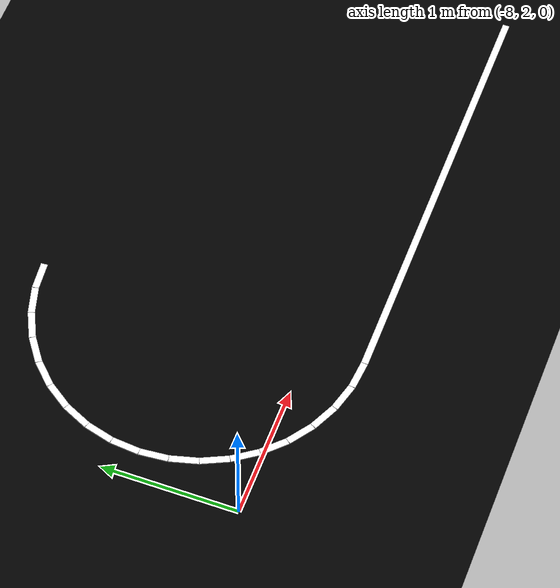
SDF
<sdf version="1.8">
 <world name="line_following_obstacle_world_v2">
  <model name="ground_plane">
   <static>true</static>
   <link name="link">
    <collision name="collision">
     <geometry><plane><normal>0 0 1</normal><size>25 25</size></plane></geometry>
    </collision>
    <visual name="visual">
     <geometry><plane><normal>0 0 1</normal><size>25 25</size></plane></geometry>
     <material><ambient>0 0 0 1</ambient><diffuse>0 0 0 1</diffuse></material>
    </visual>
   </link>
  </model>
  <model name="left_top_u_1">
   <static>true</static>
   <pose>-6.7042 3.9909 0.0060 0 0 -3.054326</pose>
   <link name="link">
    <collision name="collision"><geometry><box><size>0.2092 0.0500 0.0050</size></box></geometry></collision>
    <visual name="visual">
     <geometry><box><size>0.2092 0.0500 0.0050</size></box></geometry>
     <material><ambient>1 1 1 1</ambient><diffuse>1 1 1 1</diffuse></material>
    </visual>
   </link>
  </model>
  <model name="left_top_u_2">
   <static>true</static>
   <pose>-6.9094 3.9547 0.0060 0 0 -2.879793</pose>
   <link name="link">
    <collision name="collision"><geometry><box><size>0.2092 0.0500 0.0050</size></box></geometry></collision>
    <visual name="visual">
     <geometry><box><size>0.2092 0.0500 0.0050</size></box></geometry>
     <material><ambient>1 1 1 1</ambient><diffuse>1 1 1 1</diffuse></material>
    </visual>
   </link>
  </model>
  <model name="left_top_u_3">
   <static>true</static>
   <pose>-7.1052 3.8834 0.0060 0 0 -2.705260</pose>
   <link name="link">
    <collision name="collision"><geometry><box><size>0.2092 0.0500 0.0050</size></box></geometry></collision>
    <visual name="visual">
     <geometry><box><size>0.2092 0.0500 0.0050</size></box></geometry>
     <material><ambient>1 1 1 1</ambient><diffuse>1 1 1 1</diffuse></material>
    </visual>
   </link>
  </model>
  <model name="left_top_u_4">
   <static>true</static>
   <pose>-7.2857 3.7792 0.0060 0 0 -2.530727</pose>
   <link name="link">
    <collision name="collision"><geometry><box><size>0.2092 0.0500 0.0050</size></box></geometry></collision>
    <visual name="visual">
     <geometry><box><size>0.2092 0.0500 0.0050</size></box></geometry>
     <material><ambient>1 1 1 1</ambient><diffuse>1 1 1 1</diffuse></material>
    </visual>
   </link>
  </model>
  <model name="left_top_u_5">
   <static>true</static>
   <pose>-7.4453 3.6453 0.0060 0 0 -2.356194</pose>
   <link name="link">
    <collision name="collision"><geometry><box><size>0.2092 0.0500 0.0050</size></box></geometry></collision>
    <visual name="visual">
     <geometry><box><size>0.2092 0.0500 0.0050</size></box></geometry>
     <material><ambient>1 1 1 1</ambient><diffuse>1 1 1 1</diffuse></material>
    </visual>
   </link>
  </model>
  <model name="left_top_u_6">
   <static>true</static>
   <pose>-7.5792 3.4857 0.0060 0 0 -2.181662</pose>
   <link name="link">
    <collision name="collision"><geometry><box><size>0.2092 0.0500 0.0050</size></box></geometry></collision>
    <visual name="visual">
     <geometry><box><size>0.2092 0.0500 0.0050</size></box></geometry>
     <material><ambient>1 1 1 1</ambient><diffuse>1 1 1 1</diffuse></material>
    </visual>
   </link>
  </model>
  <model name="left_top_u_7">
   <static>true</static>
   <pose>-7.6834 3.3052 0.0060 0 0 -2.007129</pose>
   <link name="link">
    <collision name="collision"><geometry><box><size>0.2092 0.0500 0.0050</size></box></geometry></collision>
    <visual name="visual">
     <geometry><box><size>0.2092 0.0500 0.0050</size></box></geometry>
     <material><ambient>1 1 1 1</ambient><diffuse>1 1 1 1</diffuse></material>
    </visual>
   </link>
  </model>
  <model name="left_top_u_8">
   <static>true</static>
   <pose>-7.7547 3.1094 0.0060 0 0 -1.832596</pose>
   <link name="link">
    <collision name="collision"><geometry><box><size>0.2092 0.0500 0.0050</size></box></geometry></collision>
    <visual name="visual">
     <geometry><box><size>0.2092 0.0500 0.0050</size></box></geometry>
     <material><ambient>1 1 1 1</ambient><diffuse>1 1 1 1</diffuse></material>
    </visual>
   </link>
  </model>
  <model name="left_top_u_9">
   <static>true</static>
   <pose>-7.7909 2.9042 0.0060 0 0 -1.658063</pose>
   <link name="link">
    <collision name="collision"><geometry><box><size>0.2092 0.0500 0.0050</size></box></geometry></collision>
    <visual name="visual">
     <geometry><box><size>0.2092 0.0500 0.0050</size></box></geometry>
     <material><ambient>1 1 1 1</ambient><diffuse>1 1 1 1</diffuse></material>
    </visual>
   </link>
  </model>
  <model name="left_top_u_10">
   <static>true</static>
   <pose>-7.7909 2.6958 0.0060 0 0 -1.483530</pose>
   <link name="link">
    <collision name="collision"><geometry><box><size>0.2092 0.0500 0.0050</size></box></geometry></collision>
    <visual name="visual">
     <geometry><box><size>0.2092 0.0500 0.0050</size></box></geometry>
     <material><ambient>1 1 1 1</ambient><diffuse>1 1 1 1</diffuse></material>
    </visual>
   </link>
  </model>
  <model name="left_top_u_11">
   <static>true</static>
   <pose>-7.7547 2.4906 0.0060 0 0 -1.308997</pose>
   <link name="link">
    <collision name="collision"><geometry><box><size>0.2092 0.0500 0.0050</size></box></geometry></collision>
    <visual name="visual">
     <geometry><box><size>0.2092 0.0500 0.0050</size></box></geometry>
     <material><ambient>1 1 1 1</ambient><diffuse>1 1 1 1</diffuse></material>
    </visual>
   </link>
  </model>
  <model name="left_top_u_12">
   <static>true</static>
   <pose>-7.6834 2.2948 0.0060 0 0 -1.134464</pose>
   <link name="link">
    <collision name="collision"><geometry><box><size>0.2092 0.0500 0.0050</size></box></geometry></collision>
    <visual name="visual">
     <geometry><box><size>0.2092 0.0500 0.0050</size></box></geometry>
     <material><ambient>1 1 1 1</ambient><diffuse>1 1 1 1</diffuse></material>
    </visual>
   </link>
  </model>
  <model name="left_top_u_13">
   <static>true</static>
   <pose>-7.5792 2.1143 0.0060 0 0 -0.959931</pose>
   <link name="link">
    <collision name="collision"><geometry><box><size>0.2092 0.0500 0.0050</size></box></geometry></collision>
    <visual name="visual">
     <geometry><box><size>0.2092 0.0500 0.0050</size></box></geometry>
     <material><ambient>1 1 1 1</ambient><diffuse>1 1 1 1</diffuse></material>
    </visual>
   </link>
  </model>
  <model name="left_top_u_14">
   <static>true</static>
   <pose>-7.4453 1.9547 0.0060 0 0 -0.785398</pose>
   <link name="link">
    <collision name="collision"><geometry><box><size>0.2092 0.0500 0.0050</size></box></geometry></collision>
    <visual name="visual">
     <geometry><box><size>0.2092 0.0500 0.0050</size></box></geometry>
     <material><ambient>1 1 1 1</ambient><diffuse>1 1 1 1</diffuse></material>
    </visual>
   </link>
  </model>
  <model name="left_top_u_15">
   <static>true</static>
   <pose>-7.2857 1.8208 0.0060 0 0 -0.610865</pose>
   <link name="link">
    <collision name="collision"><geometry><box><size>0.2092 0.0500 0.0050</size></box></geometry></collision>
    <visual name="visual">
     <geometry><box><size>0.2092 0.0500 0.0050</size></box></geometry>
     <material><ambient>1 1 1 1</ambient><diffuse>1 1 1 1</diffuse></material>
    </visual>
   </link>
  </model>
  <model name="left_top_u_16">
   <static>true</static>
   <pose>-7.1052 1.7166 0.0060 0 0 -0.436332</pose>
   <link name="link">
    <collision name="collision"><geometry><box><size>0.2092 0.0500 0.0050</size></box></geometry></collision>
    <visual name="visual">
     <geometry><box><size>0.2092 0.0500 0.0050</size></box></geometry>
     <material><ambient>1 1 1 1</ambient><diffuse>1 1 1 1</diffuse></material>
    </visual>
   </link>
  </model>
  <model name="left_top_u_17">
   <static>true</static>
   <pose>-6.9094 1.6453 0.0060 0 0 -0.261799</pose>
   <link name="link">
    <collision name="collision"><geometry><box><size>0.2092 0.0500 0.0050</size></box></geometry></collision>
    <visual name="visual">
     <geometry><box><size>0.2092 0.0500 0.0050</size></box></geometry>
     <material><ambient>1 1 1 1</ambient><diffuse>1 1 1 1</diffuse></material>
    </visual>
   </link>
  </model>
  <model name="left_top_u_18">
   <static>true</static>
   <pose>-6.7042 1.6091 0.0060 0 0 -0.087266</pose>
   <link name="link">
    <collision name="collision"><geometry><box><size>0.2092 0.0500 0.0050</size></box></geometry></collision>
    <visual name="visual">
     <geometry><box><size>0.2092 0.0500 0.0050</size></box></geometry>
     <material><ambient>1 1 1 1</ambient><diffuse>1 1 1 1</diffuse></material>
    </visual>
   </link>
  </model>
  <model name="left_mid_upper">
   <static>true</static>
   <pose>-5.0000 1.6000 0.0060 0 0 0.000000</pose>
   <link name="link">
    <collision name="collision"><geometry><box><size>3.2000 0.0500 0.0050</size></box></geometry></collision>
    <visual name="visual">
     <geometry><box><size>3.2000 0.0500 0.0050</size></box></geometry>
     <material><ambient>1 1 1 1</ambient><diffuse>1 1 1 1</diffuse></material>
    </visual>
   </link>
  </model>
 </world>
</sdf>
